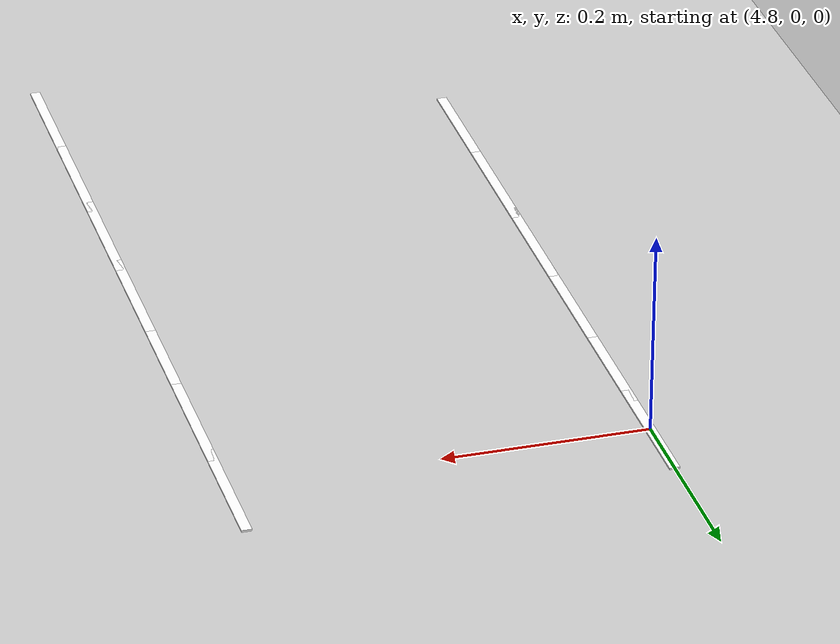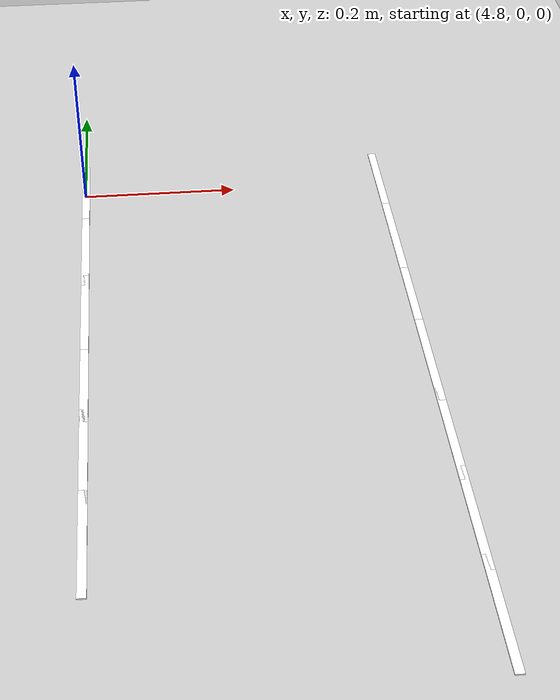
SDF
<sdf version="1.7">
 <world name="default">
  <model name="ground_plane">
   <static>1</static>
   <link name="link">
    <collision name="collision">
     <geometry><plane><normal>0 0 1</normal><size>100 100</size></plane></geometry>
     <surface>
      <contact><collide_bitmask>65535</collide_bitmask></contact>
      <friction><ode><mu>100</mu><mu2>50</mu2></ode></friction>
     </surface>
    </collision>
    <visual name="visual">
     <cast_shadows>0</cast_shadows>
     <geometry><plane><normal>0 0 1</normal><size>100 100</size></plane></geometry>
     <material>
      <script><uri>file://media/materials/scripts/gazebo.material</uri><name>Gazebo/Grey</name></script>
     </material>
    </visual>
   </link>
  </model>
  <model name="lane_line_right_118">
   <static>1</static>
   <link name="link">
    <pose>0 0 -0.004 0 -0 0</pose>
    <visual name="visual">
     <geometry><box><size>0.1424 0.01 0.01</size></box></geometry>
     <material><ambient>1 1 1 1</ambient><diffuse>1 1 1 1</diffuse></material>
    </visual>
    <collision name="collision"><geometry><box><size>0.1424 0.01 0.01</size></box></geometry></collision>
   </link>
   <pose>5.2 -0.734694 0 0 -0 1.5708</pose>
  </model>
  <model name="lane_line_left_119">
   <static>1</static>
   <link name="link">
    <pose>0 0 -0.004 0 -0 0</pose>
    <visual name="visual">
     <geometry><box><size>0.1424 0.01 0.01</size></box></geometry>
     <material><ambient>1 1 1 1</ambient><diffuse>1 1 1 1</diffuse></material>
    </visual>
    <collision name="collision"><geometry><box><size>0.1424 0.01 0.01</size></box></geometry></collision>
   </link>
   <pose>4.8 -0.612245 0 0 -0 1.5708</pose>
  </model>
  <model name="lane_line_right_119">
   <static>1</static>
   <link name="link">
    <pose>0 0 -0.004 0 -0 0</pose>
    <visual name="visual">
     <geometry><box><size>0.1424 0.01 0.01</size></box></geometry>
     <material><ambient>1 1 1 1</ambient><diffuse>1 1 1 1</diffuse></material>
    </visual>
    <collision name="collision"><geometry><box><size>0.1424 0.01 0.01</size></box></geometry></collision>
   </link>
   <pose>5.2 -0.612245 0 0 -0 1.5708</pose>
  </model>
  <model name="lane_line_left_120">
   <static>1</static>
   <link name="link">
    <pose>0 0 -0.004 0 -0 0</pose>
    <visual name="visual">
     <geometry><box><size>0.1424 0.01 0.01</size></box></geometry>
     <material><ambient>1 1 1 1</ambient><diffuse>1 1 1 1</diffuse></material>
    </visual>
    <collision name="collision"><geometry><box><size>0.1424 0.01 0.01</size></box></geometry></collision>
   </link>
   <pose>4.8 -0.489796 0 0 -0 1.5708</pose>
  </model>
  <model name="lane_line_right_120">
   <static>1</static>
   <link name="link">
    <pose>0 0 -0.004 0 -0 0</pose>
    <visual name="visual">
     <geometry><box><size>0.1424 0.01 0.01</size></box></geometry>
     <material><ambient>1 1 1 1</ambient><diffuse>1 1 1 1</diffuse></material>
    </visual>
    <collision name="collision"><geometry><box><size>0.1424 0.01 0.01</size></box></geometry></collision>
   </link>
   <pose>5.2 -0.489796 0 0 -0 1.5708</pose>
  </model>
  <model name="lane_line_left_121">
   <static>1</static>
   <link name="link">
    <pose>0 0 -0.004 0 -0 0</pose>
    <visual name="visual">
     <geometry><box><size>0.1424 0.01 0.01</size></box></geometry>
     <material><ambient>1 1 1 1</ambient><diffuse>1 1 1 1</diffuse></material>
    </visual>
    <collision name="collision"><geometry><box><size>0.1424 0.01 0.01</size></box></geometry></collision>
   </link>
   <pose>4.8 -0.367347 0 0 -0 1.5708</pose>
  </model>
  <model name="lane_line_right_121">
   <static>1</static>
   <link name="link">
    <pose>0 0 -0.004 0 -0 0</pose>
    <visual name="visual">
     <geometry><box><size>0.1424 0.01 0.01</size></box></geometry>
     <material><ambient>1 1 1 1</ambient><diffuse>1 1 1 1</diffuse></material>
    </visual>
    <collision name="collision"><geometry><box><size>0.1424 0.01 0.01</size></box></geometry></collision>
   </link>
   <pose>5.2 -0.367347 0 0 -0 1.5708</pose>
  </model>
  <model name="lane_line_left_122">
   <static>1</static>
   <link name="link">
    <pose>0 0 -0.004 0 -0 0</pose>
    <visual name="visual">
     <geometry><box><size>0.1424 0.01 0.01</size></box></geometry>
     <material><ambient>1 1 1 1</ambient><diffuse>1 1 1 1</diffuse></material>
    </visual>
    <collision name="collision"><geometry><box><size>0.1424 0.01 0.01</size></box></geometry></collision>
   </link>
   <pose>4.8 -0.244898 0 0 -0 1.5708</pose>
  </model>
  <model name="lane_line_right_122">
   <static>1</static>
   <link name="link">
    <pose>0 0 -0.004 0 -0 0</pose>
    <visual name="visual">
     <geometry><box><size>0.1424 0.01 0.01</size></box></geometry>
     <material><ambient>1 1 1 1</ambient><diffuse>1 1 1 1</diffuse></material>
    </visual>
    <collision name="collision"><geometry><box><size>0.1424 0.01 0.01</size></box></geometry></collision>
   </link>
   <pose>5.2 -0.244898 0 0 -0 1.5708</pose>
  </model>
  <model name="lane_line_left_123">
   <static>1</static>
   <link name="link">
    <pose>0 0 -0.004 0 -0 0</pose>
    <visual name="visual">
     <geometry><box><size>0.1424 0.01 0.01</size></box></geometry>
     <material><ambient>1 1 1 1</ambient><diffuse>1 1 1 1</diffuse></material>
    </visual>
    <collision name="collision"><geometry><box><size>0.1424 0.01 0.01</size></box></geometry></collision>
   </link>
   <pose>4.8 -0.122449 0 0 -0 1.5708</pose>
  </model>
  <model name="lane_line_right_123">
   <static>1</static>
   <link name="link">
    <pose>0 0 -0.004 0 -0 0</pose>
    <visual name="visual">
     <geometry><box><size>0.1424 0.01 0.01</size></box></geometry>
     <material><ambient>1 1 1 1</ambient><diffuse>1 1 1 1</diffuse></material>
    </visual>
    <collision name="collision"><geometry><box><size>0.1424 0.01 0.01</size></box></geometry></collision>
   </link>
   <pose>5.2 -0.122449 0 0 -0 1.5708</pose>
  </model>
  <model name="lane_line_left_124">
   <static>1</static>
   <link name="link">
    <pose>0 0 -0.004 0 -0 0</pose>
    <visual name="visual">
     <geometry><box><size>0.1424 0.01 0.01</size></box></geometry>
     <material><ambient>1 1 1 1</ambient><diffuse>1 1 1 1</diffuse></material>
    </visual>
    <collision name="collision"><geometry><box><size>0.1424 0.01 0.01</size></box></geometry></collision>
   </link>
   <pose>4.8 0 0 0 -0 1.5708</pose>
  </model>
  <model name="lane_line_right_124">
   <static>1</static>
   <link name="link">
    <pose>0 0 -0.004 0 -0 0</pose>
    <visual name="visual">
     <geometry><box><size>0.1424 0.01 0.01</size></box></geometry>
     <material><ambient>1 1 1 1</ambient><diffuse>1 1 1 1</diffuse></material>
    </visual>
    <collision name="collision"><geometry><box><size>0.1424 0.01 0.01</size></box></geometry></collision>
   </link>
   <pose>5.2 0 0 0 -0 1.5708</pose>
  </model>
 </world>
</sdf>
